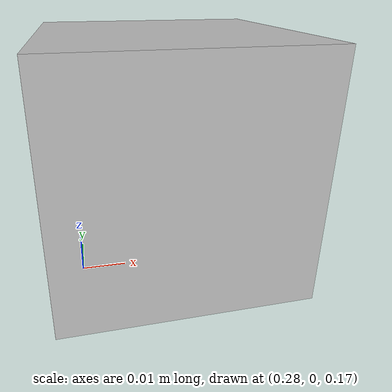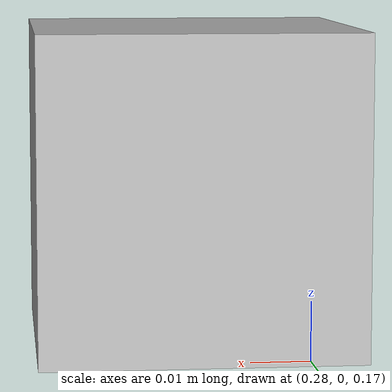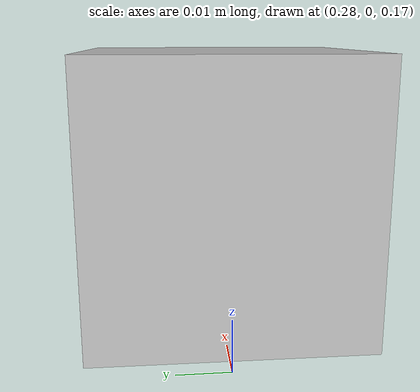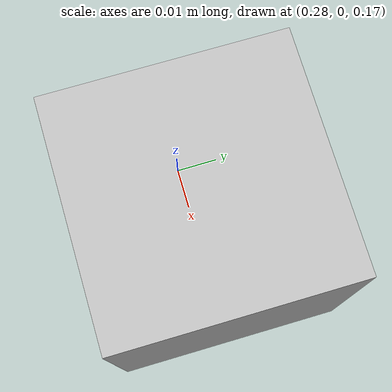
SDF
<?xml version="1.0"?>
<sdf version="1.12">
  <model name="test_range_sensor">
    <static>true</static>

    <link name="sensor_link">
      <pose>0.3 0 0.2 0 0 0</pose>

      <visual name="visual">
        <geometry>
          <box>
            <size>0.05 0.05 0.05</size>
          </box>
        </geometry>
      </visual>

      <collision name="collision">
        <geometry>
          <box>
            <size>0.05 0.05 0.05</size>
          </box>
        </geometry>
      </collision>

      <sensor name="front_sensor" type="ray">
        <always_on>true</always_on>
        <visualize>true</visualize>
        <update_rate>10</update_rate>
        <topic>/range_front_raw</topic>

        <ray>
          <scan>
            <horizontal>
                <samples>360</samples>
                <resolution>1</resolution>
                <min_angle>0.000000</min_angle>
                <max_angle>6.280000</max_angle>
            </horizontal>
          </scan>

          <range>
            <min>0.12</min>
            <max>10</max>
            <resolution>0.01</resolution>
          </range>
        </ray>
      </sensor>
    </link>
  </model>
</sdf>
